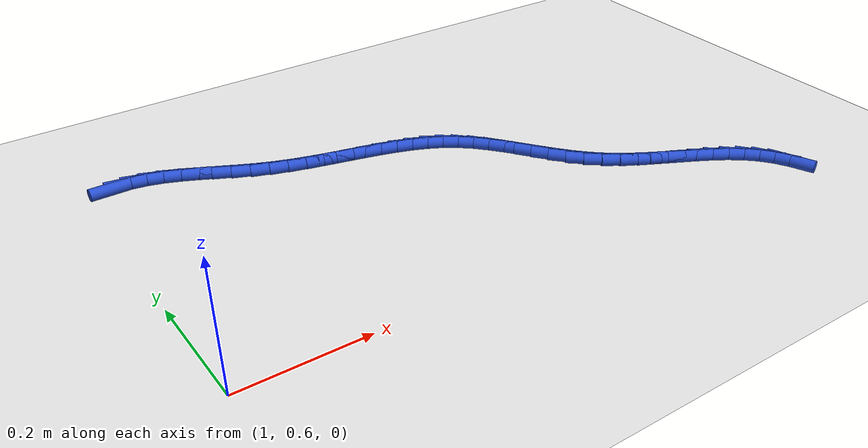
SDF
<sdf version="1.6">
 <world name="default">
  <model name="ground_plane">
   <static>1</static>
   <link name="link">
    <collision name="collision">
     <geometry><plane><normal>0 0 1</normal><size>100 100</size></plane></geometry>
     <surface><friction><ode><mu>100</mu><mu2>50</mu2></ode></friction></surface>
    </collision>
    <visual name="visual">
     <cast_shadows>0</cast_shadows>
     <geometry><plane><normal>0 0 1</normal><size>100 100</size></plane></geometry>
     <material>
      <script><uri>file://media/materials/scripts/gazebo.material</uri><name>Gazebo/WhiteGlow</name></script>
     </material>
    </visual>
   </link>
  </model>
  <model name="line">
   <link name="link_59">
    <pose>1.0478758758476074 1.1283198257218325 0.01 0 1.57 0.00601099778260239</pose>
    <collision name="collision">
     <geometry><cylinder><radius>0.01</radius><length>0.08</length></cylinder></geometry>
    </collision>
    <visual name="visual">
     <material>
      <script><name>Gazebo/Blue</name><uri>file://media/materials/scripts/gazebo.material</uri></script>
     </material>
     <geometry><cylinder><radius>0.01</radius><length>0.08</length></cylinder></geometry>
    </visual>
   </link>
   <link name="link_60">
    <pose>1.0727127009879251 1.1284691216208067 0.01 0 1.57 -0.16331660266532677</pose>
    <collision name="collision">
     <geometry><cylinder><radius>0.01</radius><length>0.08</length></cylinder></geometry>
    </collision>
    <visual name="visual">
     <material>
      <script><name>Gazebo/Blue</name><uri>file://media/materials/scripts/gazebo.material</uri></script>
     </material>
     <geometry><cylinder><radius>0.01</radius><length>0.08</length></cylinder></geometry>
    </visual>
   </link>
   <link name="link_61">
    <pose>1.0976721626707933 1.124356194857279 0.01 0 1.57 -0.2957451794228205</pose>
    <collision name="collision">
     <geometry><cylinder><radius>0.01</radius><length>0.08</length></cylinder></geometry>
    </collision>
    <visual name="visual">
     <material>
      <script><name>Gazebo/Blue</name><uri>file://media/materials/scripts/gazebo.material</uri></script>
     </material>
     <geometry><cylinder><radius>0.01</radius><length>0.08</length></cylinder></geometry>
    </visual>
   </link>
   <link name="link_62">
    <pose>1.1228185402960609 1.1166945867234979 0.01 0 1.57 -0.38785912382981985</pose>
    <collision name="collision">
     <geometry><cylinder><radius>0.01</radius><length>0.08</length></cylinder></geometry>
    </collision>
    <visual name="visual">
     <material>
      <script><name>Gazebo/Blue</name><uri>file://media/materials/scripts/gazebo.material</uri></script>
     </material>
     <geometry><cylinder><radius>0.01</radius><length>0.08</length></cylinder></geometry>
    </visual>
   </link>
   <link name="link_63">
    <pose>1.1482156298654553 1.1063184914934814 0.01 0 1.57 -0.44482399619984925</pose>
    <collision name="collision">
     <geometry><cylinder><radius>0.01</radius><length>0.08</length></cylinder></geometry>
    </collision>
    <visual name="visual">
     <material>
      <script><name>Gazebo/Blue</name><uri>file://media/materials/scripts/gazebo.material</uri></script>
     </material>
     <geometry><cylinder><radius>0.01</radius><length>0.08</length></cylinder></geometry>
    </visual>
   </link>
   <link name="link_64">
    <pose>1.173927227380702 1.0940621034412468 0.01 0 1.57 -0.47151326427162166</pose>
    <collision name="collision">
     <geometry><cylinder><radius>0.01</radius><length>0.08</length></cylinder></geometry>
    </collision>
    <visual name="visual">
     <material>
      <script><name>Gazebo/Blue</name><uri>file://media/materials/scripts/gazebo.material</uri></script>
     </material>
     <geometry><cylinder><radius>0.01</radius><length>0.08</length></cylinder></geometry>
    </visual>
   </link>
   <link name="link_65">
    <pose>1.200017128843528 1.0807596168408118 0.01 0 1.57 -0.4711090554304261</pose>
    <collision name="collision">
     <geometry><cylinder><radius>0.01</radius><length>0.08</length></cylinder></geometry>
    </collision>
    <visual name="visual">
     <material>
      <script><name>Gazebo/Blue</name><uri>file://media/materials/scripts/gazebo.material</uri></script>
     </material>
     <geometry><cylinder><radius>0.01</radius><length>0.08</length></cylinder></geometry>
    </visual>
   </link>
   <link name="link_66">
    <pose>1.2265491302556608 1.067245225966194 0.01 0 1.57 -0.44492895027313606</pose>
    <collision name="collision">
     <geometry><cylinder><radius>0.01</radius><length>0.08</length></cylinder></geometry>
    </collision>
    <visual name="visual">
     <material>
      <script><name>Gazebo/Blue</name><uri>file://media/materials/scripts/gazebo.material</uri></script>
     </material>
     <geometry><cylinder><radius>0.01</radius><length>0.08</length></cylinder></geometry>
    </visual>
   </link>
   <link name="link_67">
    <pose>1.2535870276188255 1.0543531250914107 0.01 0 1.57 -0.39299823563864233</pose>
    <collision name="collision">
     <geometry><cylinder><radius>0.01</radius><length>0.08</length></cylinder></geometry>
    </collision>
    <visual name="visual">
     <material>
      <script><name>Gazebo/Blue</name><uri>file://media/materials/scripts/gazebo.material</uri></script>
     </material>
     <geometry><cylinder><radius>0.01</radius><length>0.08</length></cylinder></geometry>
    </visual>
   </link>
   <link name="link_68">
    <pose>1.2811926713797106 1.0429088166045448 0.01 0 1.57 -0.33049163172046775</pose>
    <collision name="collision">
     <geometry><cylinder><radius>0.01</radius><length>0.08</length></cylinder></geometry>
    </collision>
    <visual name="visual">
     <material>
      <script><name>Gazebo/Blue</name><uri>file://media/materials/scripts/gazebo.material</uri></script>
     </material>
     <geometry><cylinder><radius>0.01</radius><length>0.08</length></cylinder></geometry>
    </visual>
   </link>
   <link name="link_69">
    <pose>1.3093206972702804 1.033258814608885 0.01 0 1.57 -0.2815875881725501</pose>
    <collision name="collision">
     <geometry><cylinder><radius>0.01</radius><length>0.08</length></cylinder></geometry>
    </collision>
    <visual name="visual">
     <material>
      <script><name>Gazebo/Blue</name><uri>file://media/materials/scripts/gazebo.material</uri></script>
     </material>
     <geometry><cylinder><radius>0.01</radius><length>0.08</length></cylinder></geometry>
    </visual>
   </link>
   <link name="link_70">
    <pose>1.3377648119008756 1.0250306725301932 0.01 0 1.57 -0.24836396946843792</pose>
    <collision name="collision">
     <geometry><cylinder><radius>0.01</radius><length>0.08</length></cylinder></geometry>
    </collision>
    <visual name="visual">
     <material>
      <script><name>Gazebo/Blue</name><uri>file://media/materials/scripts/gazebo.material</uri></script>
     </material>
     <geometry><cylinder><radius>0.01</radius><length>0.08</length></cylinder></geometry>
    </visual>
   </link>
   <link name="link_71">
    <pose>1.3663054748513392 1.0177927618765934 0.01 0 1.57 -0.23085047905146766</pose>
    <collision name="collision">
     <geometry><cylinder><radius>0.01</radius><length>0.08</length></cylinder></geometry>
    </collision>
    <visual name="visual">
     <material>
      <script><name>Gazebo/Blue</name><uri>file://media/materials/scripts/gazebo.material</uri></script>
     </material>
     <geometry><cylinder><radius>0.01</radius><length>0.08</length></cylinder></geometry>
    </visual>
   </link>
   <link name="link_72">
    <pose>1.3947231457015168 1.0111134541562095 0.01 0 1.57 -0.22928150995498292</pose>
    <collision name="collision">
     <geometry><cylinder><radius>0.01</radius><length>0.08</length></cylinder></geometry>
    </collision>
    <visual name="visual">
     <material>
      <script><name>Gazebo/Blue</name><uri>file://media/materials/scripts/gazebo.material</uri></script>
     </material>
     <geometry><cylinder><radius>0.01</radius><length>0.08</length></cylinder></geometry>
    </visual>
   </link>
   <link name="link_73">
    <pose>1.422798284031251 1.0045611208771639 0.01 0 1.57 -0.24425061075656226</pose>
    <collision name="collision">
     <geometry><cylinder><radius>0.01</radius><length>0.08</length></cylinder></geometry>
    </collision>
    <visual name="visual">
     <material>
      <script><name>Gazebo/Blue</name><uri>file://media/materials/scripts/gazebo.material</uri></script>
     </material>
     <geometry><cylinder><radius>0.01</radius><length>0.08</length></cylinder></geometry>
    </visual>
   </link>
   <link name="link_74">
    <pose>1.450311349420386 0.9977041335475803 0.01 0 1.57 -0.2767672594154409</pose>
    <collision name="collision">
     <geometry><cylinder><radius>0.01</radius><length>0.08</length></cylinder></geometry>
    </collision>
    <visual name="visual">
     <material>
      <script><name>Gazebo/Blue</name><uri>file://media/materials/scripts/gazebo.material</uri></script>
     </material>
     <geometry><cylinder><radius>0.01</radius><length>0.08</length></cylinder></geometry>
    </visual>
   </link>
   <link name="link_75">
    <pose>1.4770428014487655 0.9901108636755823 0.01 0 1.57 -0.328187127649729</pose>
    <collision name="collision">
     <geometry><cylinder><radius>0.01</radius><length>0.08</length></cylinder></geometry>
    </collision>
    <visual name="visual">
     <material>
      <script><name>Gazebo/Blue</name><uri>file://media/materials/scripts/gazebo.material</uri></script>
     </material>
     <geometry><cylinder><radius>0.01</radius><length>0.08</length></cylinder></geometry>
    </visual>
   </link>
   <link name="link_76">
    <pose>1.5027730996962336 0.9813496827692936 0.01 0 1.57 -0.39993859641854923</pose>
    <collision name="collision">
     <geometry><cylinder><radius>0.01</radius><length>0.08</length></cylinder></geometry>
    </collision>
    <visual name="visual">
     <material>
      <script><name>Gazebo/Blue</name><uri>file://media/materials/scripts/gazebo.material</uri></script>
     </material>
     <geometry><cylinder><radius>0.01</radius><length>0.08</length></cylinder></geometry>
    </visual>
   </link>
   <link name="link_77">
    <pose>1.527282703742634 0.9709889623368367 0.01 0 1.57 -0.4929300123405884</pose>
    <collision name="collision">
     <geometry><cylinder><radius>0.01</radius><length>0.08</length></cylinder></geometry>
    </collision>
    <visual name="visual">
     <material>
      <script><name>Gazebo/Blue</name><uri>file://media/materials/scripts/gazebo.material</uri></script>
     </material>
     <geometry><cylinder><radius>0.01</radius><length>0.08</length></cylinder></geometry>
    </visual>
   </link>
   <link name="link_78">
    <pose>1.5503520731678115 0.9585970738863361 0.01 0 1.57 -0.6065750552336949</pose>
    <collision name="collision">
     <geometry><cylinder><radius>0.01</radius><length>0.08</length></cylinder></geometry>
    </collision>
    <visual name="visual">
     <material>
      <script><name>Gazebo/Blue</name><uri>file://media/materials/scripts/gazebo.material</uri></script>
     </material>
     <geometry><cylinder><radius>0.01</radius><length>0.08</length></cylinder></geometry>
    </visual>
   </link>
   <link name="link_79">
    <pose>1.571761668116775 0.9437423897750558 0.01 0 1.57 -0.7295199770159899</pose>
    <collision name="collision">
     <geometry><cylinder><radius>0.01</radius><length>0.08</length></cylinder></geometry>
    </collision>
    <visual name="visual">
     <material>
      <script><name>Gazebo/Blue</name><uri>file://media/materials/scripts/gazebo.material</uri></script>
     </material>
     <geometry><cylinder><radius>0.01</radius><length>0.08</length></cylinder></geometry>
    </visual>
   </link>
   <link name="link_80">
    <pose>1.5914121201744722 0.9261738355577437 0.01 0 1.57 -0.827335638315967</pose>
    <collision name="collision">
     <geometry><cylinder><radius>0.01</radius><length>0.08</length></cylinder></geometry>
    </collision>
    <visual name="visual">
     <material>
      <script><name>Gazebo/Blue</name><uri>file://media/materials/scripts/gazebo.material</uri></script>
     </material>
     <geometry><cylinder><radius>0.01</radius><length>0.08</length></cylinder></geometry>
    </visual>
   </link>
   <link name="link_81">
    <pose>1.6096608000650288 0.9063265706566659 0.01 0 1.57 -0.8934965955901712</pose>
    <collision name="collision">
     <geometry><cylinder><radius>0.01</radius><length>0.08</length></cylinder></geometry>
    </collision>
    <visual name="visual">
     <material>
      <script><name>Gazebo/Blue</name><uri>file://media/materials/scripts/gazebo.material</uri></script>
     </material>
     <geometry><cylinder><radius>0.01</radius><length>0.08</length></cylinder></geometry>
    </visual>
   </link>
   <link name="link_82">
    <pose>1.6269735720434981 0.8847987620599939 0.01 0 1.57 -0.930555801806167</pose>
    <collision name="collision">
     <geometry><cylinder><radius>0.01</radius><length>0.08</length></cylinder></geometry>
    </collision>
    <visual name="visual">
     <material>
      <script><name>Gazebo/Blue</name><uri>file://media/materials/scripts/gazebo.material</uri></script>
     </material>
     <geometry><cylinder><radius>0.01</radius><length>0.08</length></cylinder></geometry>
    </visual>
   </link>
   <link name="link_83">
    <pose>1.6438163003649355 0.8621885767558993 0.01 0 1.57 -0.9407939139846383</pose>
    <collision name="collision">
     <geometry><cylinder><radius>0.01</radius><length>0.08</length></cylinder></geometry>
    </collision>
    <visual name="visual">
     <material>
      <script><name>Gazebo/Blue</name><uri>file://media/materials/scripts/gazebo.material</uri></script>
     </material>
     <geometry><cylinder><radius>0.01</radius><length>0.08</length></cylinder></geometry>
    </visual>
   </link>
   <link name="link_84">
    <pose>1.6606548492843956 0.8390941817325538 0.01 0 1.57 -0.9254900649072607</pose>
    <collision name="collision">
     <geometry><cylinder><radius>0.01</radius><length>0.08</length></cylinder></geometry>
    </collision>
    <visual name="visual">
     <material>
      <script><name>Gazebo/Blue</name><uri>file://media/materials/scripts/gazebo.material</uri></script>
     </material>
     <geometry><cylinder><radius>0.01</radius><length>0.08</length></cylinder></geometry>
    </visual>
   </link>
   <link name="link_85">
    <pose>1.677955083056932 0.8161137439781283 0.01 0 1.57 -0.8848448357464563</pose>
    <collision name="collision">
     <geometry><cylinder><radius>0.01</radius><length>0.08</length></cylinder></geometry>
    </collision>
    <visual name="visual">
     <material>
      <script><name>Gazebo/Blue</name><uri>file://media/materials/scripts/gazebo.material</uri></script>
     </material>
     <geometry><cylinder><radius>0.01</radius><length>0.08</length></cylinder></geometry>
    </visual>
   </link>
   <link name="link_86">
    <pose>1.6961828659376008 0.7938454304807953 0.01 0 1.57 -0.8183298649322214</pose>
    <collision name="collision">
     <geometry><cylinder><radius>0.01</radius><length>0.08</length></cylinder></geometry>
    </collision>
    <visual name="visual">
     <material>
      <script><name>Gazebo/Blue</name><uri>file://media/materials/scripts/gazebo.material</uri></script>
     </material>
     <geometry><cylinder><radius>0.01</radius><length>0.08</length></cylinder></geometry>
    </visual>
   </link>
   <link name="link_87">
    <pose>1.715804062181455 0.7728874082287257 0.01 0 1.57 -0.7257040507521734</pose>
    <collision name="collision">
     <geometry><cylinder><radius>0.01</radius><length>0.08</length></cylinder></geometry>
    </collision>
    <visual name="visual">
     <material>
      <script><name>Gazebo/Blue</name><uri>file://media/materials/scripts/gazebo.material</uri></script>
     </material>
     <geometry><cylinder><radius>0.01</radius><length>0.08</length></cylinder></geometry>
    </visual>
   </link>
   <link name="link_88">
    <pose>1.7372803175049918 0.7538334461420261 0.01 0 1.57 -0.6257090188929538</pose>
    <collision name="collision">
     <geometry><cylinder><radius>0.01</radius><length>0.08</length></cylinder></geometry>
    </collision>
    <visual name="visual">
     <material>
      <script><name>Gazebo/Blue</name><uri>file://media/materials/scripts/gazebo.material</uri></script>
     </material>
     <geometry><cylinder><radius>0.01</radius><length>0.08</length></cylinder></geometry>
    </visual>
   </link>
   <link name="link_89">
    <pose>1.7607130859549456 0.73690179269498 0.01 0 1.57 -0.5501909915015114</pose>
    <collision name="collision">
     <geometry><cylinder><radius>0.01</radius><length>0.08</length></cylinder></geometry>
    </collision>
    <visual name="visual">
     <material>
      <script><name>Gazebo/Blue</name><uri>file://media/materials/scripts/gazebo.material</uri></script>
     </material>
     <geometry><cylinder><radius>0.01</radius><length>0.08</length></cylinder></geometry>
    </visual>
   </link>
   <link name="link_90">
    <pose>1.7855732943867684 0.7216533356513106 0.01 0 1.57 -0.5010048318322857</pose>
    <collision name="collision">
     <geometry><cylinder><radius>0.01</radius><length>0.08</length></cylinder></geometry>
    </collision>
    <visual name="visual">
     <material>
      <script><name>Gazebo/Blue</name><uri>file://media/materials/scripts/gazebo.material</uri></script>
     </material>
     <geometry><cylinder><radius>0.01</radius><length>0.08</length></cylinder></geometry>
    </visual>
   </link>
   <link name="link_91">
    <pose>1.8112682114061447 0.7075825954033089 0.01 0 1.57 -0.4768241362765456</pose>
    <collision name="collision">
     <geometry><cylinder><radius>0.01</radius><length>0.08</length></cylinder></geometry>
    </collision>
    <visual name="visual">
     <material>
      <script><name>Gazebo/Blue</name><uri>file://media/materials/scripts/gazebo.material</uri></script>
     </material>
     <geometry><cylinder><radius>0.01</radius><length>0.08</length></cylinder></geometry>
    </visual>
   </link>
   <link name="link_92">
    <pose>1.8372051056187577 0.6941840923432651 0.01 0 1.57 -0.47726937682716924</pose>
    <collision name="collision">
     <geometry><cylinder><radius>0.01</radius><length>0.08</length></cylinder></geometry>
    </collision>
    <visual name="visual">
     <material>
      <script><name>Gazebo/Blue</name><uri>file://media/materials/scripts/gazebo.material</uri></script>
     </material>
     <geometry><cylinder><radius>0.01</radius><length>0.08</length></cylinder></geometry>
    </visual>
   </link>
   <link name="link_93">
    <pose>1.8627912456302902 0.6809523468634694 0.01 0 1.57 -0.5033729361750356</pose>
    <collision name="collision">
     <geometry><cylinder><radius>0.01</radius><length>0.08</length></cylinder></geometry>
    </collision>
    <visual name="visual">
     <material>
      <script><name>Gazebo/Blue</name><uri>file://media/materials/scripts/gazebo.material</uri></script>
     </material>
     <geometry><cylinder><radius>0.01</radius><length>0.08</length></cylinder></geometry>
    </visual>
   </link>
   <link name="link_94">
    <pose>1.887433900046425 0.6673818793562127 0.01 0 1.57 -0.5577631410821349</pose>
    <collision name="collision">
     <geometry><cylinder><radius>0.01</radius><length>0.08</length></cylinder></geometry>
    </collision>
    <visual name="visual">
     <material>
      <script><name>Gazebo/Blue</name><uri>file://media/materials/scripts/gazebo.material</uri></script>
     </material>
     <geometry><cylinder><radius>0.01</radius><length>0.08</length></cylinder></geometry>
    </visual>
   </link>
   <link name="link_95">
    <pose>1.9105403374728456 0.6529672102137853 0.01 0 1.57 -0.6444533306885508</pose>
    <collision name="collision">
     <geometry><cylinder><radius>0.01</radius><length>0.08</length></cylinder></geometry>
    </collision>
    <visual name="visual">
     <material>
      <script><name>Gazebo/Blue</name><uri>file://media/materials/scripts/gazebo.material</uri></script>
     </material>
     <geometry><cylinder><radius>0.01</radius><length>0.08</length></cylinder></geometry>
    </visual>
   </link>
   <link name="link_96">
    <pose>1.9315178265152357 0.6372028598284776 0.01 0 1.57 -0.767661271729567</pose>
    <collision name="collision">
     <geometry><cylinder><radius>0.01</radius><length>0.08</length></cylinder></geometry>
    </collision>
    <visual name="visual">
     <material>
      <script><name>Gazebo/Blue</name><uri>file://media/materials/scripts/gazebo.material</uri></script>
     </material>
     <geometry><cylinder><radius>0.01</radius><length>0.08</length></cylinder></geometry>
    </visual>
   </link>
   <link name="link_97">
    <pose>1.9497736849786942 0.6195833850014055 0.01 0 1.57 -0.9185904003810628</pose>
    <collision name="collision">
     <geometry><cylinder><radius>0.01</radius><length>0.08</length></cylinder></geometry>
    </collision>
    <visual name="visual">
     <material>
      <script><name>Gazebo/Blue</name><uri>file://media/materials/scripts/gazebo.material</uri></script>
     </material>
     <geometry><cylinder><radius>0.01</radius><length>0.08</length></cylinder></geometry>
    </visual>
   </link>
   <link name="link_98">
    <pose>1.9649177881755309 0.5997532402630047 0.01 0 1.57 -1.0589268943196093</pose>
    <collision name="collision">
     <geometry><cylinder><radius>0.01</radius><length>0.08</length></cylinder></geometry>
    </collision>
    <visual name="visual">
     <material>
      <script><name>Gazebo/Blue</name><uri>file://media/materials/scripts/gazebo.material</uri></script>
     </material>
     <geometry><cylinder><radius>0.01</radius><length>0.08</length></cylinder></geometry>
    </visual>
   </link>
   <link name="link_99">
    <pose>1.9772242506678317 0.5778484341554048 0.01 0 1.57 -1.1765067183911107</pose>
    <collision name="collision">
     <geometry><cylinder><radius>0.01</radius><length>0.08</length></cylinder></geometry>
    </collision>
    <visual name="visual">
     <material>
      <script><name>Gazebo/Blue</name><uri>file://media/materials/scripts/gazebo.material</uri></script>
     </material>
     <geometry><cylinder><radius>0.01</radius><length>0.08</length></cylinder></geometry>
    </visual>
   </link>
  </model>
 </world>
</sdf>
